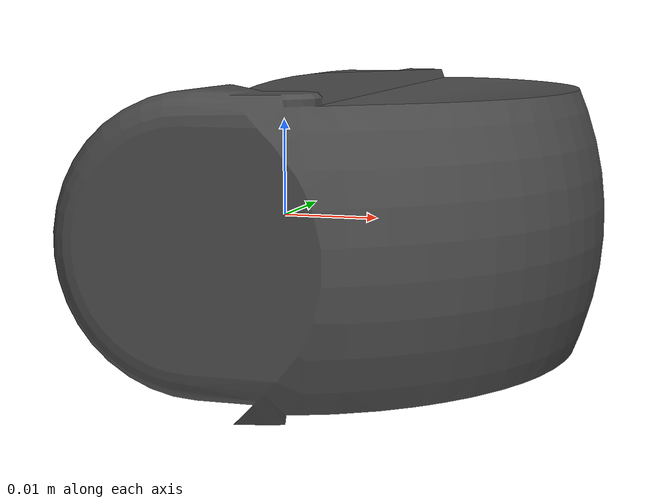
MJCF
<mujoco model="wrist_link">
  <default>
    <default class="visual">
      <geom group="2" type="mesh" contype="0" conaffinity="0"/>
    </default>
    <default class="collision">
      <geom group="3" type="mesh"/>
    </default>
  </default>
  <asset>
    <material name="mtl_wrist_link" specular="0.20000000000000004" shininess="1.0" rgba="0.29803922 0.29803922 0.29803922 1.0"/>
    <mesh file="wrist_link.obj"/>
  </asset>
  <worldbody>
    <body name="wrist_link">
      <geom material="mtl_wrist_link" mesh="wrist_link" class="visual"/>
      <geom mesh="wrist_link" class="collision"/>
    </body>
  </worldbody>
</mujoco>
